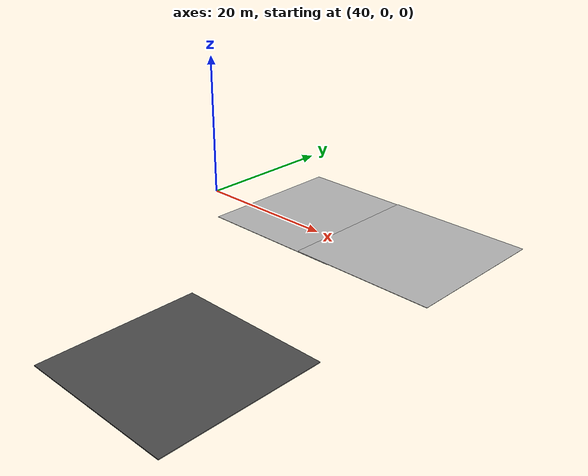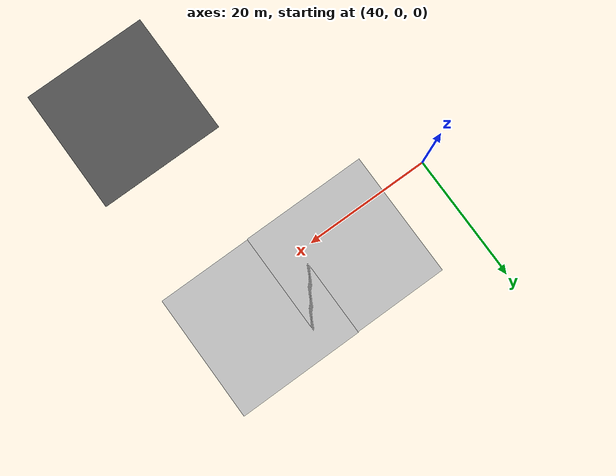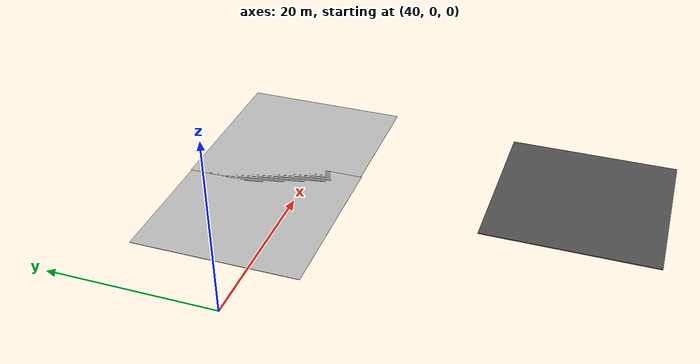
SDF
<sdf version="1.6">
 <world name="default">
  <model name="asphalt_plane">
   <static>1</static>
   <link name="link">
    <collision name="collision"><geometry><box><size>20 20 0.1</size></box></geometry></collision>
    <visual name="visual">
     <cast_shadows>0</cast_shadows>
     <geometry><box><size>20 20 0.1</size></box></geometry>
     <material>
      <script>
       <uri>model://asphalt_plane/materials/scripts</uri>
       <uri>model://asphalt_plane/materials/textures</uri>
       <name>vrc/asphalt</name>
      </script>
     </material>
    </visual>
   </link>
   <pose>70.7475 -31.5972 0 0 -0 0</pose>
  </model>
  <model name="Floor_30">
   <link name="main">
    <pose>0 0 0.01 0 -0 0</pose>
    <collision name="main_Collision"><geometry><box><size>20 20 0.05</size></box></geometry></collision>
    <visual name="main_Visual">
     <geometry><box><size>20 20 0.05</size></box></geometry>
     <material>
      <script>
       <uri>model://Floor_medium/materials/scripts</uri>
       <uri>model://Floor_medium/materials/textures</uri>
       <name>floor</name>
      </script>
     </material>
    </visual>
   </link>
   <static>1</static>
   <pose>72.0637 4.23485 0 0 -0 0</pose>
  </model>
  <model name="Floor_32">
   <link name="main">
    <pose>0 0 0.01 0 -0 0</pose>
    <collision name="main_Collision"><geometry><box><size>20 20 0.05</size></box></geometry></collision>
    <visual name="main_Visual">
     <geometry><box><size>20 20 0.05</size></box></geometry>
     <material>
      <script>
       <uri>model://Floor_medium/materials/scripts</uri>
       <uri>model://Floor_medium/materials/textures</uri>
       <name>floor</name>
      </script>
     </material>
    </visual>
   </link>
   <static>1</static>
   <pose>57.0667 4.14407 0 0 -0 0</pose>
  </model>
 </world>
</sdf>
